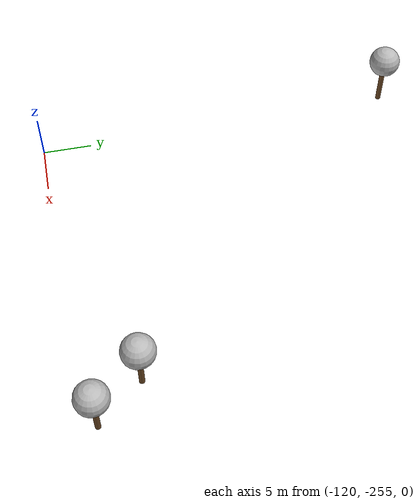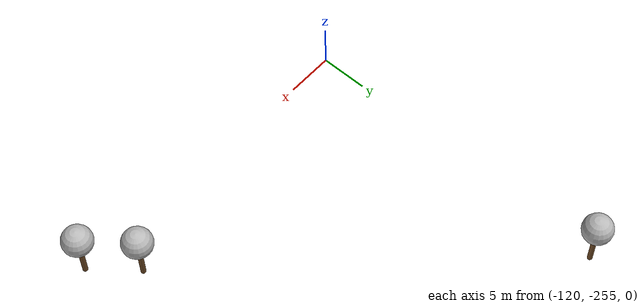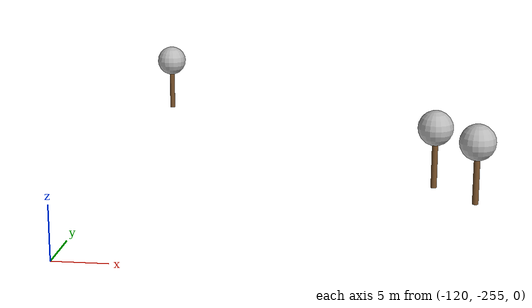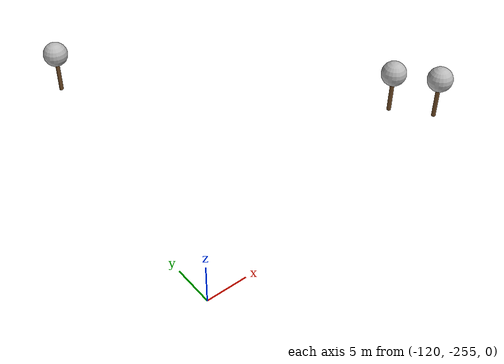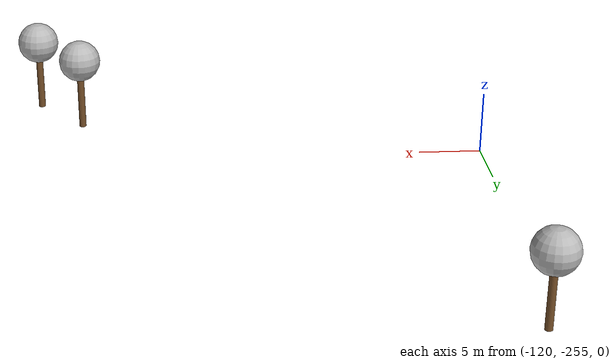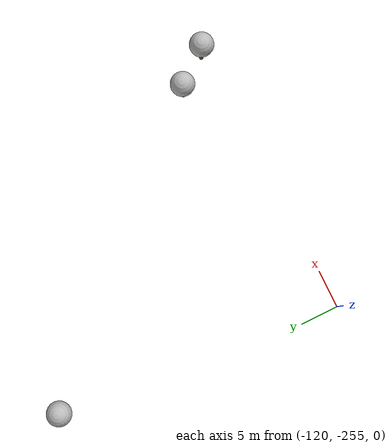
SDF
<sdf version="1.7">
 <world name="default">
  <model name="tree_simple_0_clone_1_clone_1">
   <static>1</static>
   <link name="link">
    <pose>0 0 0.1 0 -0 0</pose>
    <inertial>
     <mass>666</mass>
     <inertia>
      <ixx>0.0861167</ixx>
      <ixy>0</ixy>
      <ixz>0</ixz>
      <iyy>0.0861167</iyy>
      <iyz>0</iyz>
      <izz>0.0861167</izz>
     </inertia>
    </inertial>
    <collision name="collision_trunk">
     <pose>0 0 2 0 -0 0</pose>
     <geometry><cylinder><radius>0.25</radius><length>4</length></cylinder></geometry>
     <surface>
      <contact>
       <poissons_ratio>0.347</poissons_ratio>
       <elastic_modulus>8.8e+09</elastic_modulus>
       <ode><kp>100000</kp><kd>100</kd><max_vel>100</max_vel><min_depth>0.001</min_depth></ode>
      </contact>
      <friction>
       <torsional>
        <coefficient>1</coefficient>
        <use_patch_radius>0</use_patch_radius>
        <surface_radius>0.01</surface_radius>
       </torsional>
      </friction>
     </surface>
    </collision>
    <collision name="collision_treetop">
     <pose>0 0 5.2 0 -0 0</pose>
     <geometry><sphere><radius>1.5</radius></sphere></geometry>
     <surface>
      <contact>
       <poissons_ratio>0.347</poissons_ratio>
       <elastic_modulus>8.8e+09</elastic_modulus>
       <ode><kp>100000</kp><kd>100</kd><max_vel>100</max_vel><min_depth>0.001</min_depth></ode>
      </contact>
      <friction>
       <torsional>
        <coefficient>1</coefficient>
        <use_patch_radius>0</use_patch_radius>
        <surface_radius>0.01</surface_radius>
       </torsional>
      </friction>
     </surface>
    </collision>
    <visual name="trunk">
     <pose>0 0 2 0 -0 0</pose>
     <geometry><cylinder><radius>0.25</radius><length>4</length></cylinder></geometry>
     <material>
      <script>
       <uri>model://tree_simple/scripts</uri>
       <uri>model://tree_simple/materials/textures</uri>
       <name>TreeSimple/Trunk</name>
      </script>
     </material>
    </visual>
    <visual name="treetop">
     <pose>0 0 5.2 0 -0 0</pose>
     <geometry><sphere><radius>1.5</radius></sphere></geometry>
     <material>
      <script>
       <uri>model://tree_simple/scripts</uri>
       <uri>model://tree_simple/materials/textures</uri>
       <name>TreeSimple/Treetop</name>
      </script>
     </material>
    </visual>
   </link>
   <pose>-116.501 -219.491 4.71357 0 -0 0</pose>
  </model>
  <model name="tree_simple_0_clone_2_clone_clone">
   <static>1</static>
   <link name="link">
    <pose>0 0 0.1 0 -0 0</pose>
    <inertial>
     <mass>666</mass>
     <inertia>
      <ixx>0.0861167</ixx>
      <ixy>0</ixy>
      <ixz>0</ixz>
      <iyy>0.0861167</iyy>
      <iyz>0</iyz>
      <izz>0.0861167</izz>
     </inertia>
    </inertial>
    <collision name="collision_trunk">
     <pose>0 0 2 0 -0 0</pose>
     <geometry><cylinder><radius>0.25</radius><length>4</length></cylinder></geometry>
     <surface>
      <contact>
       <poissons_ratio>0.347</poissons_ratio>
       <elastic_modulus>8.8e+09</elastic_modulus>
       <ode><kp>100000</kp><kd>100</kd><max_vel>100</max_vel><min_depth>0.001</min_depth></ode>
      </contact>
      <friction>
       <torsional>
        <coefficient>1</coefficient>
        <use_patch_radius>0</use_patch_radius>
        <surface_radius>0.01</surface_radius>
       </torsional>
      </friction>
     </surface>
    </collision>
    <collision name="collision_treetop">
     <pose>0 0 5.2 0 -0 0</pose>
     <geometry><sphere><radius>1.5</radius></sphere></geometry>
     <surface>
      <contact>
       <poissons_ratio>0.347</poissons_ratio>
       <elastic_modulus>8.8e+09</elastic_modulus>
       <ode><kp>100000</kp><kd>100</kd><max_vel>100</max_vel><min_depth>0.001</min_depth></ode>
      </contact>
      <friction>
       <torsional>
        <coefficient>1</coefficient>
        <use_patch_radius>0</use_patch_radius>
        <surface_radius>0.01</surface_radius>
       </torsional>
      </friction>
     </surface>
    </collision>
    <visual name="trunk">
     <pose>0 0 2 0 -0 0</pose>
     <geometry><cylinder><radius>0.25</radius><length>4</length></cylinder></geometry>
     <material>
      <script>
       <uri>model://tree_simple/scripts</uri>
       <uri>model://tree_simple/materials/textures</uri>
       <name>TreeSimple/Trunk</name>
      </script>
     </material>
    </visual>
    <visual name="treetop">
     <pose>0 0 5.2 0 -0 0</pose>
     <geometry><sphere><radius>1.5</radius></sphere></geometry>
     <material>
      <script>
       <uri>model://tree_simple/scripts</uri>
       <uri>model://tree_simple/materials/textures</uri>
       <name>TreeSimple/Treetop</name>
      </script>
     </material>
    </visual>
   </link>
   <pose>-88.2002 -248.827 5.69982 0 -0 0</pose>
  </model>
  <model name="tree_simple_0_clone_2_clone_clone_0">
   <static>1</static>
   <link name="link">
    <pose>0 0 0.1 0 -0 0</pose>
    <inertial>
     <mass>666</mass>
     <inertia>
      <ixx>0.0861167</ixx>
      <ixy>0</ixy>
      <ixz>0</ixz>
      <iyy>0.0861167</iyy>
      <iyz>0</iyz>
      <izz>0.0861167</izz>
     </inertia>
    </inertial>
    <collision name="collision_trunk">
     <pose>0 0 2 0 -0 0</pose>
     <geometry><cylinder><radius>0.25</radius><length>4</length></cylinder></geometry>
     <surface>
      <contact>
       <poissons_ratio>0.347</poissons_ratio>
       <elastic_modulus>8.8e+09</elastic_modulus>
       <ode><kp>100000</kp><kd>100</kd><max_vel>100</max_vel><min_depth>0.001</min_depth></ode>
      </contact>
      <friction>
       <torsional>
        <coefficient>1</coefficient>
        <use_patch_radius>0</use_patch_radius>
        <surface_radius>0.01</surface_radius>
       </torsional>
      </friction>
     </surface>
    </collision>
    <collision name="collision_treetop">
     <pose>0 0 5.2 0 -0 0</pose>
     <geometry><sphere><radius>1.5</radius></sphere></geometry>
     <surface>
      <contact>
       <poissons_ratio>0.347</poissons_ratio>
       <elastic_modulus>8.8e+09</elastic_modulus>
       <ode><kp>100000</kp><kd>100</kd><max_vel>100</max_vel><min_depth>0.001</min_depth></ode>
      </contact>
      <friction>
       <torsional>
        <coefficient>1</coefficient>
        <use_patch_radius>0</use_patch_radius>
        <surface_radius>0.01</surface_radius>
       </torsional>
      </friction>
     </surface>
    </collision>
    <visual name="trunk">
     <pose>0 0 2 0 -0 0</pose>
     <geometry><cylinder><radius>0.25</radius><length>4</length></cylinder></geometry>
     <material>
      <script>
       <uri>model://tree_simple/scripts</uri>
       <uri>model://tree_simple/materials/textures</uri>
       <name>TreeSimple/Trunk</name>
      </script>
     </material>
    </visual>
    <visual name="treetop">
     <pose>0 0 5.2 0 -0 0</pose>
     <geometry><sphere><radius>1.5</radius></sphere></geometry>
     <material>
      <script>
       <uri>model://tree_simple/scripts</uri>
       <uri>model://tree_simple/materials/textures</uri>
       <name>TreeSimple/Treetop</name>
      </script>
     </material>
    </visual>
   </link>
   <pose>-84.8774 -252.936 5.69982 0 -0 0</pose>
  </model>
 </world>
</sdf>
